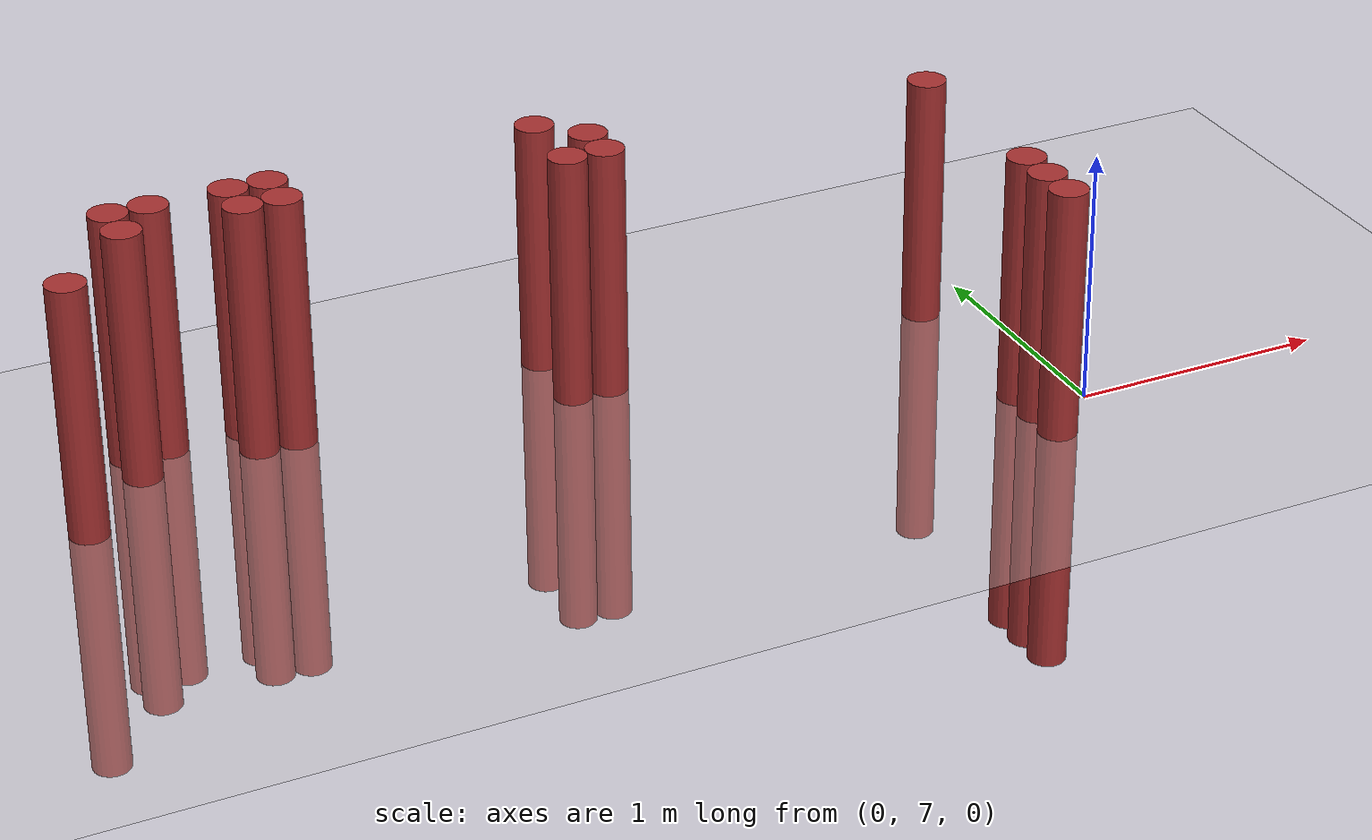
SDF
<sdf version="1.6">
 <world name="default">
  <model name="ground_plane">
   <static>1</static>
   <link name="link">
    <collision name="collision">
     <geometry><plane><normal>0 0 1</normal><size>100 100</size></plane></geometry>
     <surface><friction><ode><mu>100</mu><mu2>50</mu2></ode></friction></surface>
    </collision>
    <visual name="visual">
     <cast_shadows>0</cast_shadows>
     <geometry><plane><normal>0 0 1</normal><size>100 100</size></plane></geometry>
     <material>
      <script><uri>file://media/materials/scripts/gazebo.material</uri><name>Gazebo/Grey</name></script>
     </material>
    </visual>
   </link>
  </model>
  <model name="unit_cylinder_167">
   <static>1</static>
   <pose>-3.675000 7.725000 0.000000 0.000000 0.000000 0.000000</pose>
   <link name="link">
    <inertial>
     <mass>1</mass>
     <inertia><ixx>0.145833</ixx><ixy>0</ixy><ixz>0</ixz><iyy>0.145833</iyy><iyz>0</iyz><izz>0.125</izz></inertia>
    </inertial>
    <collision name="collision">
     <geometry><cylinder><radius>0.075000</radius><length>2</length></cylinder></geometry>
    </collision>
    <visual name="visual">
     <geometry><cylinder><radius>0.075000</radius><length>2</length></cylinder></geometry>
     <material>
      <ambient>0.648000 0.192000 0.192000 1</ambient>
      <diffuse>0.648000 0.192000 0.192000 1</diffuse>
     </material>
     <material>
      <script><name>Gazebo/Grey</name><uri>file://media/materials/scripts/gazebo.material</uri></script>
     </material>
    </visual>
   </link>
  </model>
  <model name="unit_cylinder_168">
   <static>1</static>
   <pose>-3.375000 8.025000 0.000000 0.000000 0.000000 0.000000</pose>
   <link name="link">
    <inertial>
     <mass>1</mass>
     <inertia><ixx>0.145833</ixx><ixy>0</ixy><ixz>0</ixz><iyy>0.145833</iyy><iyz>0</iyz><izz>0.125</izz></inertia>
    </inertial>
    <collision name="collision">
     <geometry><cylinder><radius>0.075000</radius><length>2</length></cylinder></geometry>
    </collision>
    <visual name="visual">
     <geometry><cylinder><radius>0.075000</radius><length>2</length></cylinder></geometry>
     <material>
      <ambient>0.648000 0.192000 0.192000 1</ambient>
      <diffuse>0.648000 0.192000 0.192000 1</diffuse>
     </material>
     <material>
      <script><name>Gazebo/Grey</name><uri>file://media/materials/scripts/gazebo.material</uri></script>
     </material>
    </visual>
   </link>
  </model>
  <model name="unit_cylinder_169">
   <static>1</static>
   <pose>-3.375000 8.175000 0.000000 0.000000 0.000000 0.000000</pose>
   <link name="link">
    <inertial>
     <mass>1</mass>
     <inertia><ixx>0.145833</ixx><ixy>0</ixy><ixz>0</ixz><iyy>0.145833</iyy><iyz>0</iyz><izz>0.125</izz></inertia>
    </inertial>
    <collision name="collision">
     <geometry><cylinder><radius>0.075000</radius><length>2</length></cylinder></geometry>
    </collision>
    <visual name="visual">
     <geometry><cylinder><radius>0.075000</radius><length>2</length></cylinder></geometry>
     <material>
      <ambient>0.648000 0.192000 0.192000 1</ambient>
      <diffuse>0.648000 0.192000 0.192000 1</diffuse>
     </material>
     <material>
      <script><name>Gazebo/Grey</name><uri>file://media/materials/scripts/gazebo.material</uri></script>
     </material>
    </visual>
   </link>
  </model>
  <model name="unit_cylinder_173">
   <static>1</static>
   <pose>-3.225000 8.175000 0.000000 0.000000 0.000000 0.000000</pose>
   <link name="link">
    <inertial>
     <mass>1</mass>
     <inertia><ixx>0.145833</ixx><ixy>0</ixy><ixz>0</ixz><iyy>0.145833</iyy><iyz>0</iyz><izz>0.125</izz></inertia>
    </inertial>
    <collision name="collision">
     <geometry><cylinder><radius>0.075000</radius><length>2</length></cylinder></geometry>
    </collision>
    <visual name="visual">
     <geometry><cylinder><radius>0.075000</radius><length>2</length></cylinder></geometry>
     <material>
      <ambient>0.648000 0.192000 0.192000 1</ambient>
      <diffuse>0.648000 0.192000 0.192000 1</diffuse>
     </material>
     <material>
      <script><name>Gazebo/Grey</name><uri>file://media/materials/scripts/gazebo.material</uri></script>
     </material>
    </visual>
   </link>
  </model>
  <model name="unit_cylinder_179">
   <static>1</static>
   <pose>-2.925000 8.025000 0.000000 0.000000 0.000000 0.000000</pose>
   <link name="link">
    <inertial>
     <mass>1</mass>
     <inertia><ixx>0.145833</ixx><ixy>0</ixy><ixz>0</ixz><iyy>0.145833</iyy><iyz>0</iyz><izz>0.125</izz></inertia>
    </inertial>
    <collision name="collision">
     <geometry><cylinder><radius>0.075000</radius><length>2</length></cylinder></geometry>
    </collision>
    <visual name="visual">
     <geometry><cylinder><radius>0.075000</radius><length>2</length></cylinder></geometry>
     <material>
      <ambient>0.648000 0.192000 0.192000 1</ambient>
      <diffuse>0.648000 0.192000 0.192000 1</diffuse>
     </material>
     <material>
      <script><name>Gazebo/Grey</name><uri>file://media/materials/scripts/gazebo.material</uri></script>
     </material>
    </visual>
   </link>
  </model>
  <model name="unit_cylinder_180">
   <static>1</static>
   <pose>-2.925000 8.175000 0.000000 0.000000 0.000000 0.000000</pose>
   <link name="link">
    <inertial>
     <mass>1</mass>
     <inertia><ixx>0.145833</ixx><ixy>0</ixy><ixz>0</ixz><iyy>0.145833</iyy><iyz>0</iyz><izz>0.125</izz></inertia>
    </inertial>
    <collision name="collision">
     <geometry><cylinder><radius>0.075000</radius><length>2</length></cylinder></geometry>
    </collision>
    <visual name="visual">
     <geometry><cylinder><radius>0.075000</radius><length>2</length></cylinder></geometry>
     <material>
      <ambient>0.648000 0.192000 0.192000 1</ambient>
      <diffuse>0.648000 0.192000 0.192000 1</diffuse>
     </material>
     <material>
      <script><name>Gazebo/Grey</name><uri>file://media/materials/scripts/gazebo.material</uri></script>
     </material>
    </visual>
   </link>
  </model>
  <model name="unit_cylinder_182">
   <static>1</static>
   <pose>-2.775000 8.025000 0.000000 0.000000 0.000000 0.000000</pose>
   <link name="link">
    <inertial>
     <mass>1</mass>
     <inertia><ixx>0.145833</ixx><ixy>0</ixy><ixz>0</ixz><iyy>0.145833</iyy><iyz>0</iyz><izz>0.125</izz></inertia>
    </inertial>
    <collision name="collision">
     <geometry><cylinder><radius>0.075000</radius><length>2</length></cylinder></geometry>
    </collision>
    <visual name="visual">
     <geometry><cylinder><radius>0.075000</radius><length>2</length></cylinder></geometry>
     <material>
      <ambient>0.648000 0.192000 0.192000 1</ambient>
      <diffuse>0.648000 0.192000 0.192000 1</diffuse>
     </material>
     <material>
      <script><name>Gazebo/Grey</name><uri>file://media/materials/scripts/gazebo.material</uri></script>
     </material>
    </visual>
   </link>
  </model>
  <model name="unit_cylinder_183">
   <static>1</static>
   <pose>-2.775000 8.175000 0.000000 0.000000 0.000000 0.000000</pose>
   <link name="link">
    <inertial>
     <mass>1</mass>
     <inertia><ixx>0.145833</ixx><ixy>0</ixy><ixz>0</ixz><iyy>0.145833</iyy><iyz>0</iyz><izz>0.125</izz></inertia>
    </inertial>
    <collision name="collision">
     <geometry><cylinder><radius>0.075000</radius><length>2</length></cylinder></geometry>
    </collision>
    <visual name="visual">
     <geometry><cylinder><radius>0.075000</radius><length>2</length></cylinder></geometry>
     <material>
      <ambient>0.648000 0.192000 0.192000 1</ambient>
      <diffuse>0.648000 0.192000 0.192000 1</diffuse>
     </material>
     <material>
      <script><name>Gazebo/Grey</name><uri>file://media/materials/scripts/gazebo.material</uri></script>
     </material>
    </visual>
   </link>
  </model>
  <model name="unit_cylinder_194">
   <static>1</static>
   <pose>-1.725000 7.875000 0.000000 0.000000 0.000000 0.000000</pose>
   <link name="link">
    <inertial>
     <mass>1</mass>
     <inertia><ixx>0.145833</ixx><ixy>0</ixy><ixz>0</ixz><iyy>0.145833</iyy><iyz>0</iyz><izz>0.125</izz></inertia>
    </inertial>
    <collision name="collision">
     <geometry><cylinder><radius>0.075000</radius><length>2</length></cylinder></geometry>
    </collision>
    <visual name="visual">
     <geometry><cylinder><radius>0.075000</radius><length>2</length></cylinder></geometry>
     <material>
      <ambient>0.648000 0.192000 0.192000 1</ambient>
      <diffuse>0.648000 0.192000 0.192000 1</diffuse>
     </material>
     <material>
      <script><name>Gazebo/Grey</name><uri>file://media/materials/scripts/gazebo.material</uri></script>
     </material>
    </visual>
   </link>
  </model>
  <model name="unit_cylinder_195">
   <static>1</static>
   <pose>-1.725000 8.175000 0.000000 0.000000 0.000000 0.000000</pose>
   <link name="link">
    <inertial>
     <mass>1</mass>
     <inertia><ixx>0.145833</ixx><ixy>0</ixy><ixz>0</ixz><iyy>0.145833</iyy><iyz>0</iyz><izz>0.125</izz></inertia>
    </inertial>
    <collision name="collision">
     <geometry><cylinder><radius>0.075000</radius><length>2</length></cylinder></geometry>
    </collision>
    <visual name="visual">
     <geometry><cylinder><radius>0.075000</radius><length>2</length></cylinder></geometry>
     <material>
      <ambient>0.648000 0.192000 0.192000 1</ambient>
      <diffuse>0.648000 0.192000 0.192000 1</diffuse>
     </material>
     <material>
      <script><name>Gazebo/Grey</name><uri>file://media/materials/scripts/gazebo.material</uri></script>
     </material>
    </visual>
   </link>
  </model>
  <model name="unit_cylinder_197">
   <static>1</static>
   <pose>-1.575000 7.875000 0.000000 0.000000 0.000000 0.000000</pose>
   <link name="link">
    <inertial>
     <mass>1</mass>
     <inertia><ixx>0.145833</ixx><ixy>0</ixy><ixz>0</ixz><iyy>0.145833</iyy><iyz>0</iyz><izz>0.125</izz></inertia>
    </inertial>
    <collision name="collision">
     <geometry><cylinder><radius>0.075000</radius><length>2</length></cylinder></geometry>
    </collision>
    <visual name="visual">
     <geometry><cylinder><radius>0.075000</radius><length>2</length></cylinder></geometry>
     <material>
      <ambient>0.648000 0.192000 0.192000 1</ambient>
      <diffuse>0.648000 0.192000 0.192000 1</diffuse>
     </material>
     <material>
      <script><name>Gazebo/Grey</name><uri>file://media/materials/scripts/gazebo.material</uri></script>
     </material>
    </visual>
   </link>
  </model>
  <model name="unit_cylinder_198">
   <static>1</static>
   <pose>-1.575000 8.025000 0.000000 0.000000 0.000000 0.000000</pose>
   <link name="link">
    <inertial>
     <mass>1</mass>
     <inertia><ixx>0.145833</ixx><ixy>0</ixy><ixz>0</ixz><iyy>0.145833</iyy><iyz>0</iyz><izz>0.125</izz></inertia>
    </inertial>
    <collision name="collision">
     <geometry><cylinder><radius>0.075000</radius><length>2</length></cylinder></geometry>
    </collision>
    <visual name="visual">
     <geometry><cylinder><radius>0.075000</radius><length>2</length></cylinder></geometry>
     <material>
      <ambient>0.648000 0.192000 0.192000 1</ambient>
      <diffuse>0.648000 0.192000 0.192000 1</diffuse>
     </material>
     <material>
      <script><name>Gazebo/Grey</name><uri>file://media/materials/scripts/gazebo.material</uri></script>
     </material>
    </visual>
   </link>
  </model>
  <model name="unit_cylinder_218">
   <static>1</static>
   <pose>-0.225000 6.825000 0.000000 0.000000 0.000000 0.000000</pose>
   <link name="link">
    <inertial>
     <mass>1</mass>
     <inertia><ixx>0.145833</ixx><ixy>0</ixy><ixz>0</ixz><iyy>0.145833</iyy><iyz>0</iyz><izz>0.125</izz></inertia>
    </inertial>
    <collision name="collision">
     <geometry><cylinder><radius>0.075000</radius><length>2</length></cylinder></geometry>
    </collision>
    <visual name="visual">
     <geometry><cylinder><radius>0.075000</radius><length>2</length></cylinder></geometry>
     <material>
      <ambient>0.648000 0.192000 0.192000 1</ambient>
      <diffuse>0.648000 0.192000 0.192000 1</diffuse>
     </material>
     <material>
      <script><name>Gazebo/Grey</name><uri>file://media/materials/scripts/gazebo.material</uri></script>
     </material>
    </visual>
   </link>
  </model>
  <model name="unit_cylinder_219">
   <static>1</static>
   <pose>-0.225000 6.975000 0.000000 0.000000 0.000000 0.000000</pose>
   <link name="link">
    <inertial>
     <mass>1</mass>
     <inertia><ixx>0.145833</ixx><ixy>0</ixy><ixz>0</ixz><iyy>0.145833</iyy><iyz>0</iyz><izz>0.125</izz></inertia>
    </inertial>
    <collision name="collision">
     <geometry><cylinder><radius>0.075000</radius><length>2</length></cylinder></geometry>
    </collision>
    <visual name="visual">
     <geometry><cylinder><radius>0.075000</radius><length>2</length></cylinder></geometry>
     <material>
      <ambient>0.648000 0.192000 0.192000 1</ambient>
      <diffuse>0.648000 0.192000 0.192000 1</diffuse>
     </material>
     <material>
      <script><name>Gazebo/Grey</name><uri>file://media/materials/scripts/gazebo.material</uri></script>
     </material>
    </visual>
   </link>
  </model>
  <model name="unit_cylinder_220">
   <static>1</static>
   <pose>-0.225000 7.125000 0.000000 0.000000 0.000000 0.000000</pose>
   <link name="link">
    <inertial>
     <mass>1</mass>
     <inertia><ixx>0.145833</ixx><ixy>0</ixy><ixz>0</ixz><iyy>0.145833</iyy><iyz>0</iyz><izz>0.125</izz></inertia>
    </inertial>
    <collision name="collision">
     <geometry><cylinder><radius>0.075000</radius><length>2</length></cylinder></geometry>
    </collision>
    <visual name="visual">
     <geometry><cylinder><radius>0.075000</radius><length>2</length></cylinder></geometry>
     <material>
      <ambient>0.648000 0.192000 0.192000 1</ambient>
      <diffuse>0.648000 0.192000 0.192000 1</diffuse>
     </material>
     <material>
      <script><name>Gazebo/Grey</name><uri>file://media/materials/scripts/gazebo.material</uri></script>
     </material>
    </visual>
   </link>
  </model>
  <model name="unit_cylinder_221">
   <static>1</static>
   <pose>-0.225000 7.875000 0.000000 0.000000 0.000000 0.000000</pose>
   <link name="link">
    <inertial>
     <mass>1</mass>
     <inertia><ixx>0.145833</ixx><ixy>0</ixy><ixz>0</ixz><iyy>0.145833</iyy><iyz>0</iyz><izz>0.125</izz></inertia>
    </inertial>
    <collision name="collision">
     <geometry><cylinder><radius>0.075000</radius><length>2</length></cylinder></geometry>
    </collision>
    <visual name="visual">
     <geometry><cylinder><radius>0.075000</radius><length>2</length></cylinder></geometry>
     <material>
      <ambient>0.648000 0.192000 0.192000 1</ambient>
      <diffuse>0.648000 0.192000 0.192000 1</diffuse>
     </material>
     <material>
      <script><name>Gazebo/Grey</name><uri>file://media/materials/scripts/gazebo.material</uri></script>
     </material>
    </visual>
   </link>
  </model>
 </world>
</sdf>
